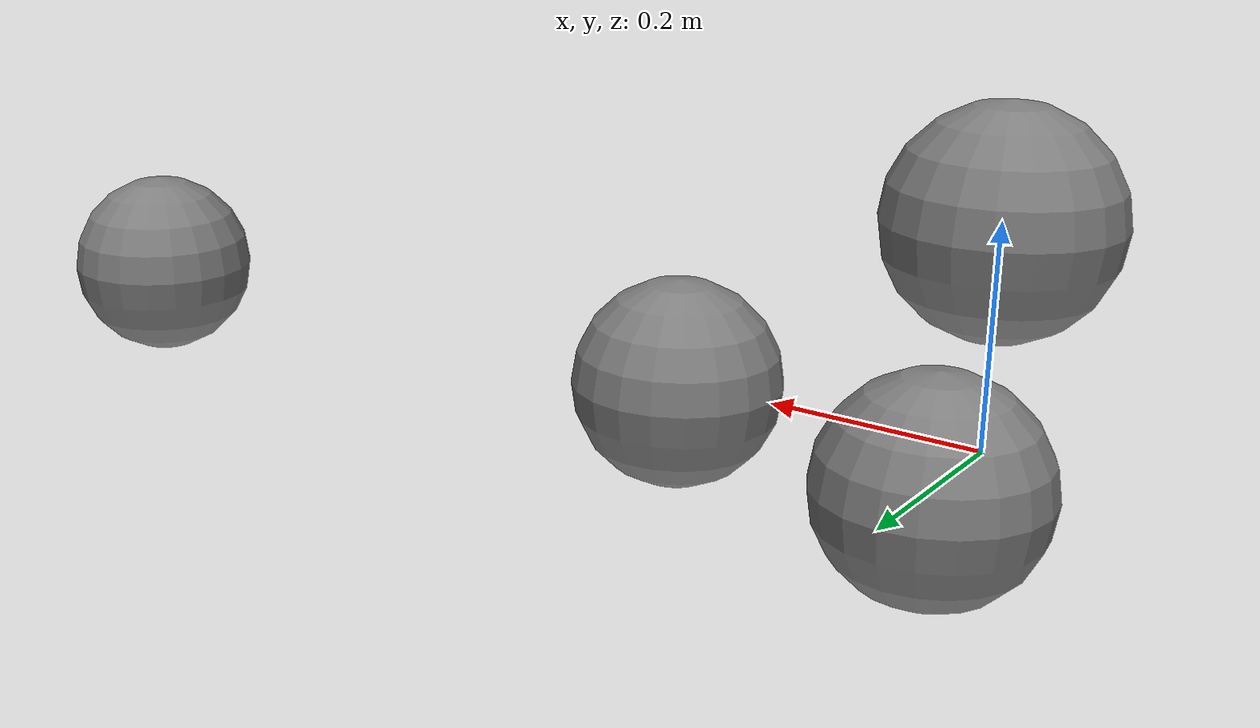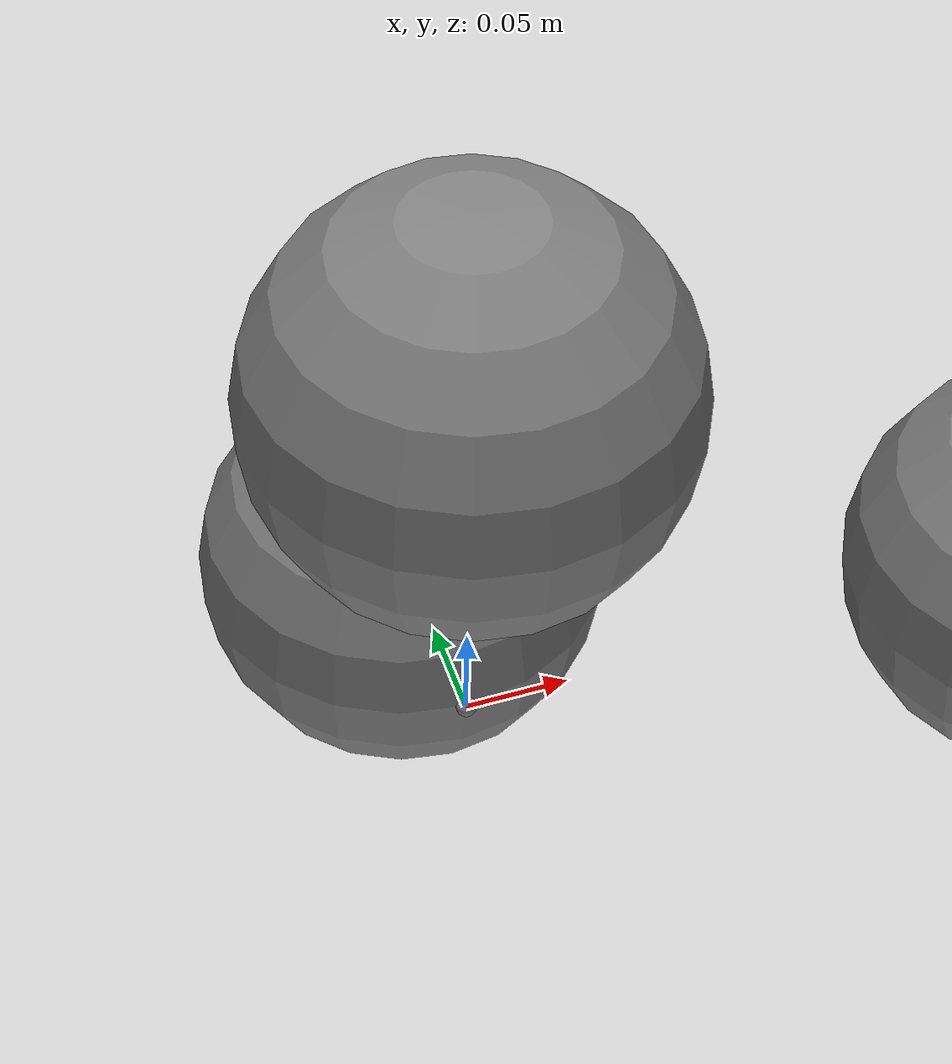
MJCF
<mujoco>
  <worldbody>
    <site name="siteworld"/>
    <body>
      <joint type="hinge" axis="1 0 0"/>
      <geom type="sphere" size=".1" pos="0 .1 0"/>
      <site name="site0"/>
      <body>
        <joint type="hinge" axis="0 1 0"/>
        <geom type="sphere" size=".1" pos="0 0 .2"/>
        <site name="site1"/>
        <body>
          <joint type="hinge" axis="0 0 1"/>
          <geom type="sphere" size=".1" pos=".3 0 0"/>
          <site name="site2"/>
        </body>
      </body>
    </body>
    <!-- unactuated -->
    <body pos="1 0 0">
      <joint name="unactuated" type="hinge" axis="1 0 0"/>
      <geom type="sphere" size=".1"/>
    </body>
  </worldbody>
  <actuator>
    <motor site="site0" gear="1 2 3 4 5 6"/>
    <motor site="site0" refsite="siteworld" gear="1 2 3 4 5 6"/>
    <motor site="site1" gear="1 2 3 4 5 6"/>
    <motor site="site1" refsite="siteworld" gear="1 2 3 4 5 6"/>
    <motor site="site2" gear="1 2 3 4 5 6"/>
    <motor site="site2" refsite="siteworld" gear="1 2 3 4 5 6"/>
  </actuator>
  <keyframe>
    <key qpos=".1 .2 .3 .4"/>
  </keyframe>
</mujoco>
